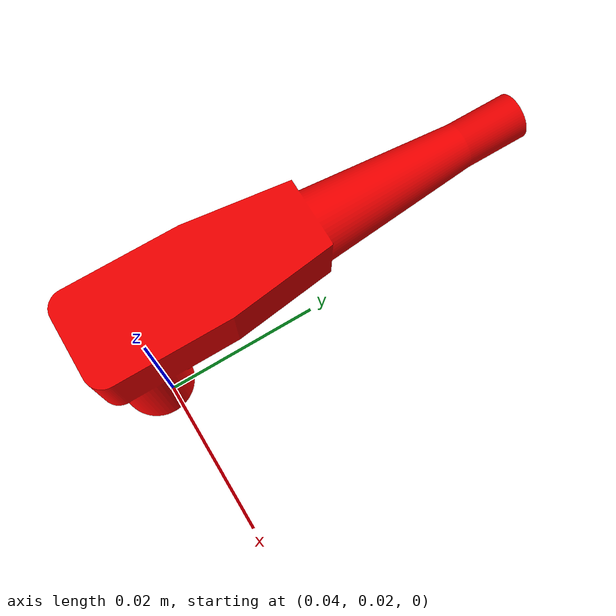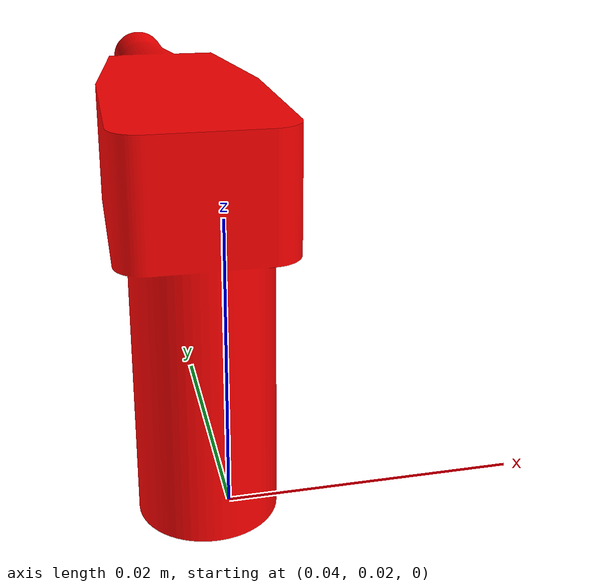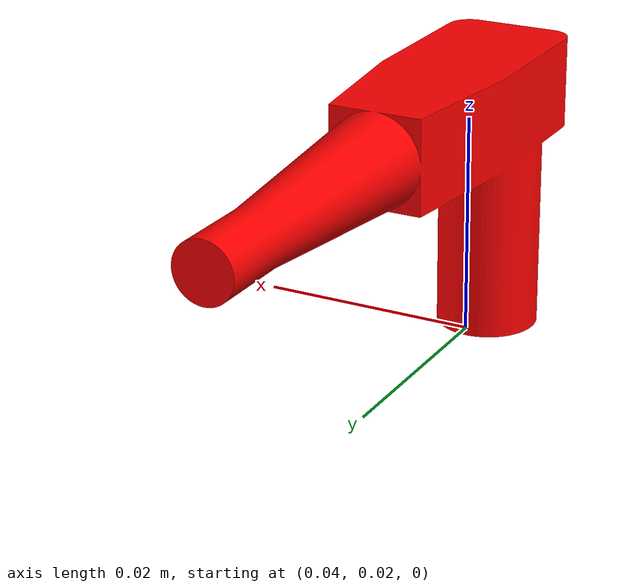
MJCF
<?xml version="1.0" ?>
<mujoco model="task_board_cable_plug">
	<compiler meshdir="task_board/meshes" texturedir="task_board/textures" angle="radian" autolimits="true" balanceinertia="true" />
	<default>
		<default class="task_board_cable_plug_visual">
			<geom contype="0" conaffinity="0"/>
		</default>
		<default class="task_board_cable_plug_collision">
			<geom rgba="0.9 0.9 0.9 1.0" group="3" friction="10.0" solimp="0.95 0.99 0.001" solref="0.004 1"/>
		</default>
	</default>
	<asset>
		<mesh name="TaskBoardCablePlug" file="stl/TaskBoardCablePlug.stl" scale="1.0 1.0 1.0"/>
		<mesh name="UCX_TaskBoardCablePlug_001" file="stl/UCX_TaskBoardCablePlug_001.stl" scale="1.0 1.0 1.0"/>
		<mesh name="UCX_TaskBoardCablePlug_002" file="stl/UCX_TaskBoardCablePlug_002.stl" scale="1.0 1.0 1.0"/>
	</asset>
	<worldbody>
		<body name="task_board_cable_plug" pos="0.03844299912452698 0.01890699937939644 0.019" quat="-0.7071068 0 0 0.7071068">
			<freejoint/>
			<inertial mass="0.009143883362412453" pos="-0.00967562384903431 -4.372870676672136e-10 -4.746794729726389e-05" quat="0.42671170830726624 0.5638414025306702 0.5638414025306702 0.42671170830726624" diaginertia="1.8079294932249468e-06 1.5876109955570428e-06 3.367600811543525e-07"/>
			<geom name="task_board_cable_plug_visual" type="mesh" pos="-0.008676216006278992 -3.99139027384976e-10 -0.0008309241384267807" quat="0.4194165766239166 0.5692887902259827 0.5692887902259827 0.4194165766239166" mesh="TaskBoardCablePlug" rgba="1.0 0.0 0.0 1.0" class="task_board_cable_plug_visual"/>
			<geom name="task_board_cable_plug_collision_001" type="mesh" pos="-0.0078870989382267 -2.2360559237544209e-10 0.00400000112131238" quat="0.0 0.7071067690849304 0.0 0.7071067690849304" mesh="UCX_TaskBoardCablePlug_001" class="task_board_cable_plug_collision"/>
			<geom name="task_board_cable_plug_collision_002" type="mesh" pos="-0.032687146216630936 -1.8100263510234527e-09 0.004000004380941391" quat="0.5 0.5 0.5 0.5" mesh="UCX_TaskBoardCablePlug_002" class="task_board_cable_plug_collision"/>
			<geom name="task_board_cable_plug_collision_003" type="cylinder" pos="0.0 0.0 -0.008999999612569809" quat="1.0 0.0 0.0 0.0" size="0.004000000189989805 0.008999999612569809 0.0" class="task_board_cable_plug_collision"/>
		</body>
	</worldbody>
	<equality/>
</mujoco>
